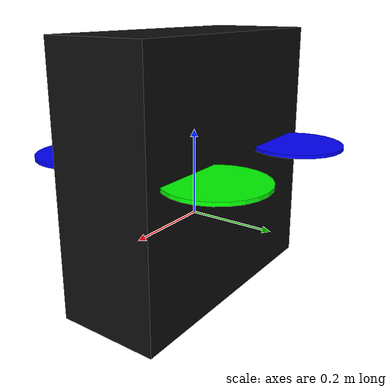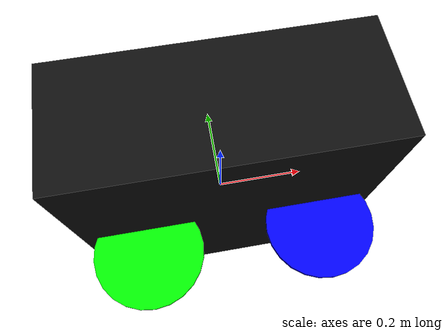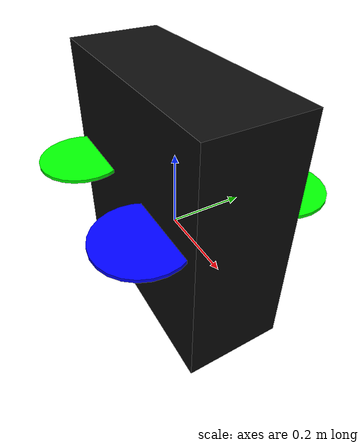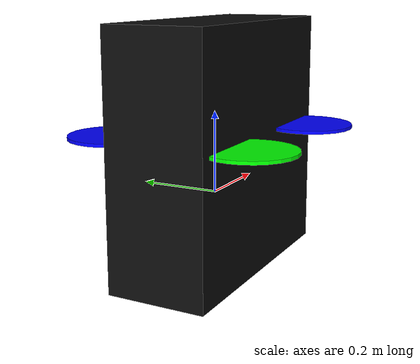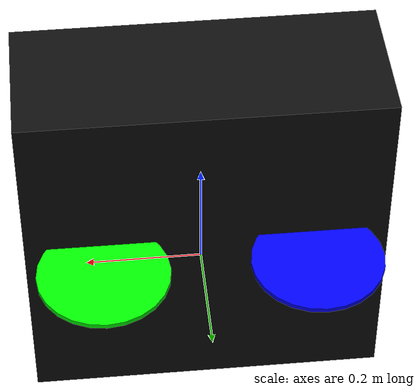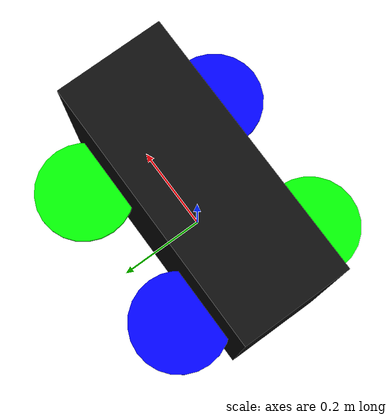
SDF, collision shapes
<?xml version='1.0'?>
<sdf version='1.9'>
  <model name='uav_with_standoffs'>
    <pose degrees="true">0 0 0.12 0 0 0</pose>  <!-- se aumentó 12 cm debido a la distancia entre la parte inferior de frame_above a la parte más baja de las patas-->
    <link name='base_link'>
      <velocity_decay>
        <linear>0.0</linear>
        <angular>0.0</angular>
      </velocity_decay>
      <inertial>
        <pose>-0.001815 0.001618 -0.019858 0 0 0</pose>
        <mass>2.0681</mass>
        <inertia>         <!--Los valores de la matriz de inercia se han calculado a partir de un modelo CAD-->
          <ixx>0.012424295</ixx>
          <ixy>0.000073681</ixy>
          <ixz>0.000240779</ixz>
          <iyy>0.014159877</iyy>
          <iyz>0.000059114</iyz>
          <izz>0.021782661</izz>
        </inertia>
      </inertial>
      <collision name='base_collision'>
        <pose>0 -0.008 0 0 0 0</pose>         <!--En el eje Z hay una distancia desde el origen del modelo hasta la parte más baja de las patas de 12 cm y 8mm más, para evitar sobreposicionamiento-->
        <geometry>
          <box>
            <size>0.6 0.24 0.6</size>
          </box>
        </geometry>
        <surface>
          <contact>
            <ode>
              <max_vel>100.0</max_vel>
              <min_depth>0.001</min_depth>
            </ode>
          </contact>
          <friction>
            <ode>
              <mu>1</mu>
              <mu2>1</mu2>
            </ode>
          </friction>
        </surface>
      </collision>
      <visual name='base_visual'>
        <geometry>
          <mesh>
            <uri>model://uav_with_standoffs/meshes/UAV.obj</uri>
          </mesh>
        </geometry>
        <material>
          <ambient>0.05 0.05 0.05</ambient>
          <diffuse>0.05 0.05 0.05</diffuse>
          <specular>1 1 1 1</specular>
          <pbr>
            <metal>
              <metalness>0.5</metalness>
              <roughness>0.5</roughness>
            </metal>
          </pbr>
        </material>
      </visual>
    </link>

    <link name='imu_link'>
      <inertial>
        <pose>0 0 0 0 0 0</pose>
        <mass>0.001</mass>
        <inertia>
          <ixx>0.00001</ixx>
          <ixy>0</ixy>
          <ixz>0</ixz>
          <iyy>0.00001</iyy>
          <iyz>0</iyz>
          <izz>0.00001</izz>
        </inertia>
      </inertial>
      <sensor name="imu_sensor" type="imu">
        <gz_frame_id>imu_link</gz_frame_id>
        <pose degrees="true">0 0 0 180 0 0</pose>
        <always_on>1</always_on>
        <update_rate>1000.0</update_rate>
      </sensor>
    </link>

    <joint name='imu_joint' type='revolute'>
      <child>imu_link</child>
      <parent>base_link</parent>
      <axis>
        <xyz>0 0 1</xyz>
        <limit>
          <lower>0</lower>
          <upper>0</upper>
          <effort>0</effort>
          <velocity>0</velocity>
        </limit>
        <dynamics>
          <damping>1.0</damping>
        </dynamics>
      </axis>
    </joint>

    <link name='rotor_0'>
      <pose>0.1737665 -0.1737665 0.03 0 0 0</pose>
      <inertial>
        <pose>0 0 0.004 0 0 0</pose>
        <mass>0.0148</mass>
        <inertia>
          <ixx>21.864e-06</ixx>
          <ixy>0</ixy>
          <ixz>0</ixz>
          <iyy>43.57e-06</iyy>
          <iyz>0</iyz>
          <izz>21.811e-06</izz>
        </inertia>
      </inertial>
      <collision name='rotor_0_collision'>
        <pose>0 0 0.004 0 0 0</pose>
        <geometry>
          <cylinder>
            <length>0.008</length>
            <radius>0.109</radius>  <!--El radio de collision es un poco más grande que el radio de 0.10795m de la hélice y altura de 8mm-->
          </cylinder>
        </geometry>
        <surface>
          <contact>
            <ode/>
          </contact>
          <friction>
            <ode/>
          </friction>
        </surface>
      </collision>
      <visual name='rotor_0_visual'>
        <pose>0 0 0 0 0 0</pose>
        <geometry>
          <mesh>
            <scale>1 1 1</scale>
            <uri>model://uav_with_standoffs/meshes/Prop.obj</uri>
          </mesh>
        </geometry>
        <material>
          <ambient>0 0 1</ambient>
          <diffuse>0 0 1</diffuse>
          <specular>1 1 1 1</specular>
          <pbr>
            <metal>
              <metalness>0.5</metalness>
              <roughness>0.5</roughness>
            </metal>
          </pbr>
        </material>
      </visual>
      <gravity>1</gravity>
      <velocity_decay/>
      <self_collide>0</self_collide>
    </link>
    <joint name='rotor_0_joint' type='revolute'>
      <child>rotor_0</child>
      <parent>base_link</parent>
      <axis>
        <xyz>0 0 1</xyz>
        <limit>
          <lower>-1e+16</lower>
          <upper>1e+16</upper>
        </limit>
        <dynamics>
          <damping>0.004</damping>
        </dynamics>
      </axis>
      <physics>
        <ode>
          <implicit_spring_damper>1</implicit_spring_damper>
        </ode>
      </physics>
    </joint>

    <link name='rotor_1'>
      <pose>-0.1737665 0.1737665 0.03 0 0 0</pose>
      <inertial>
        <pose>0 0 0.004 0 0 0</pose>
        <mass>0.0148</mass>
        <inertia>
          <ixx>21.864e-06</ixx>
          <ixy>0</ixy>
          <ixz>0</ixz>
          <iyy>43.57e-06</iyy>
          <iyz>0</iyz>
          <izz>21.811e-06</izz>
        </inertia>
      </inertial>
      <collision name='rotor_1_collision'>
        <pose>0 0 0.004 0 0 0</pose>
        <geometry>
          <cylinder>
            <length>0.008</length>
            <radius>0.109</radius>
          </cylinder>
        </geometry>
        <surface>
          <contact>
            <ode/>
          </contact>
          <friction>
            <ode/>
          </friction>
        </surface>
      </collision>
      <visual name='rotor_1_visual'>
        <pose>0 0 0 0 0 0</pose>
        <geometry>
          <mesh>
            <scale>1 1 1</scale>
            <uri>model://uav_with_standoffs/meshes/Prop.obj</uri>
          </mesh>
        </geometry>
        <material>
          <ambient>0 0 1 1</ambient>
          <diffuse>0 0 1 1</diffuse>
          <specular>1 1 1 1</specular>
          <pbr>
            <metal>
              <metalness>0.5</metalness>
              <roughness>0.5</roughness>
            </metal>
          </pbr>
        </material>
      </visual>
      <gravity>1</gravity>
      <velocity_decay/>
      <self_collide>0</self_collide>
    </link>
    <joint name='rotor_1_joint' type='revolute'>
      <child>rotor_1</child>
      <parent>base_link</parent>
      <axis>
        <xyz>0 0 1</xyz>
        <limit>
          <lower>-1e+16</lower>
          <upper>1e+16</upper>
        </limit>
        <dynamics>
          <damping>0.004</damping>
        </dynamics>
      </axis>
      <physics>
        <ode>
          <implicit_spring_damper>1</implicit_spring_damper>
        </ode>
      </physics>
    </joint>

    <link name='rotor_2'>
      <pose>0.1737665 0.1737665 0.03 0 0 0</pose>
      <inertial>
        <pose>0 0 0.004 0 0 0</pose>
        <mass>0.0148</mass>
        <inertia>
          <ixx>21.864e-06</ixx>
          <ixy>0</ixy>
          <ixz>0</ixz>
          <iyy>43.57e-06</iyy>
          <iyz>0</iyz>
          <izz>21.811e-06</izz>
        </inertia>
      </inertial>
      <collision name='rotor_2_collision'>
        <pose>0 0 0.004 0 0 0</pose>
        <geometry>
          <cylinder>
            <length>0.008</length>
            <radius>0.109</radius>
          </cylinder>
        </geometry>
        <surface>
          <contact>
            <ode/>
          </contact>
          <friction>
            <ode/>
          </friction>
        </surface>
      </collision>
      <visual name='rotor_2_visual'>
        <pose>0 0 0 0 0 0</pose>
        <geometry>
          <mesh>
            <scale>1 1 1</scale>
            <uri>model://uav_with_standoffs/meshes/Prop.obj</uri>
          </mesh>
        </geometry>
        <material>
          <ambient>0 1 0</ambient>
          <diffuse>0 1 0</diffuse>
          <specular>1 1 1 1</specular>
          <pbr>
            <metal>
              <metalness>0.5</metalness>
              <roughness>0.5</roughness>
            </metal>
          </pbr>
        </material>
      </visual>
      <gravity>1</gravity>
      <velocity_decay/>
      <self_collide>0</self_collide>
    </link>
    <joint name='rotor_2_joint' type='revolute'>
      <child>rotor_2</child>
      <parent>base_link</parent>
      <axis>
        <xyz>0 0 1</xyz>
        <limit>
          <lower>-1e+16</lower>
          <upper>1e+16</upper>
        </limit>
        <dynamics>
          <damping>0.004</damping>
        </dynamics>
      </axis>
      <physics>
        <ode>
          <implicit_spring_damper>1</implicit_spring_damper>
        </ode>
      </physics>
    </joint>

    <link name='rotor_3'>
      <pose>-0.1737665 -0.1737665 0.03 0 0 0</pose>
      <inertial>
        <pose>0 0.004 0 0 0 0</pose>
        <mass>0.0148</mass>
        <inertia>
          <ixx>21.864e-06</ixx>
          <ixy>0</ixy>
          <ixz>0</ixz>
          <iyy>43.57e-06</iyy>
          <iyz>0</iyz>
          <izz>21.811e-06</izz>
        </inertia>
      </inertial>
      <collision name='rotor_3_collision'>
        <pose>0 0 0.004 0 0 0</pose>
        <geometry>
          <cylinder>
            <length>0.008</length>
            <radius>0.109</radius>
          </cylinder>
        </geometry>
        <surface>
          <contact>
            <ode/>
          </contact>
          <friction>
            <ode/>
          </friction>
        </surface>
      </collision>
      <visual name='rotor_3_visual'>
        <pose>0 0 0 0 0 0</pose>
        <geometry>
          <mesh>
            <scale>1 1 1</scale>
            <uri>model://uav_with_standoffs/meshes/Prop.obj</uri>
          </mesh>
        </geometry>
        <material>
          <ambient>0 1 0</ambient>
          <diffuse>0 1 0</diffuse>
          <specular>1 1 1 1</specular>
          <pbr>
            <metal>
              <metalness>0.5</metalness>
              <roughness>0.5</roughness>
            </metal>
          </pbr>
        </material>
      </visual>
      <gravity>1</gravity>
      <velocity_decay/>
      <self_collide>0</self_collide>
    </link>
    <joint name='rotor_3_joint' type='revolute'>
      <child>rotor_3</child>
      <parent>base_link</parent>
      <axis>
        <xyz>0 0 1</xyz>
        <limit>
          <lower>-1e+16</lower>
          <upper>1e+16</upper>
        </limit>
        <dynamics>
          <damping>0.004</damping>
        </dynamics>
      </axis>
      <physics>
        <ode>
          <implicit_spring_damper>1</implicit_spring_damper>
        </ode>
      </physics>
    </joint>

  </model>
</sdf>
